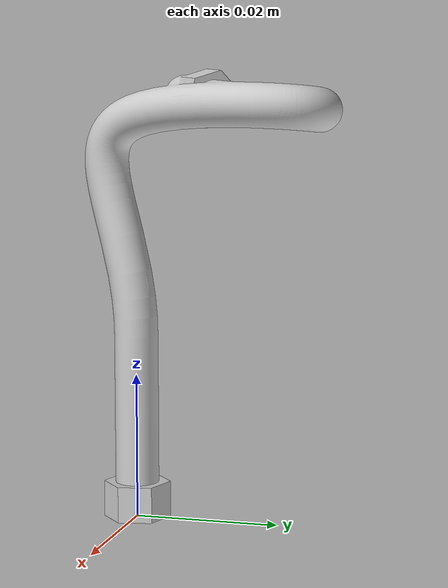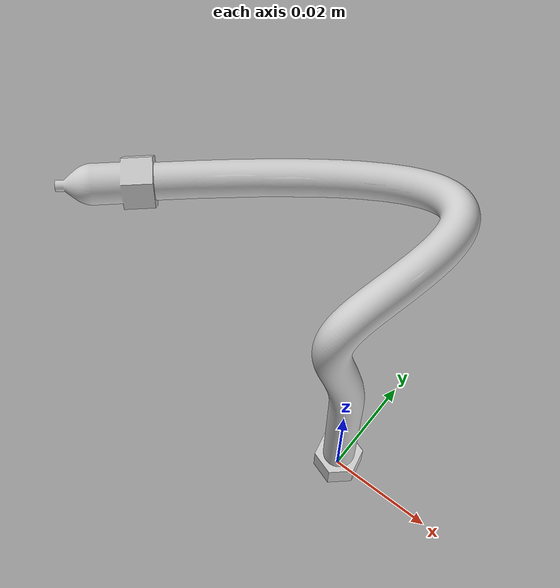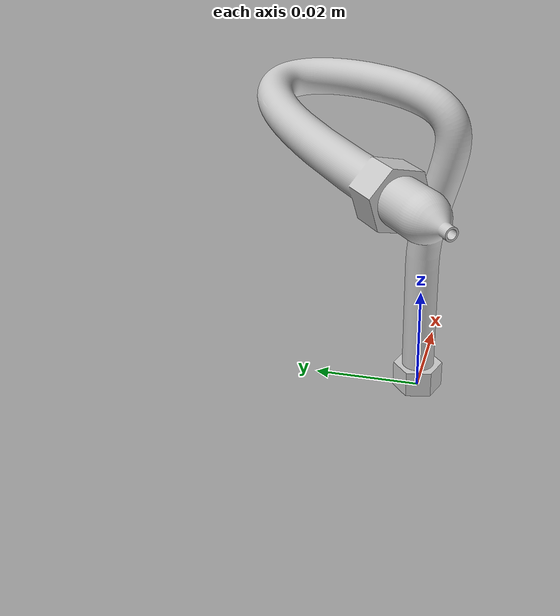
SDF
<?xml version="1.0" ?>
<sdf version="1.5">
  <model name="fuel-line1">
    <static>false</static>
    <link name="link">
      <collision name="collision">
        <geometry>
          <box>
            <size>1.70 0.50 0.57</size>
          </box>
        </geometry>
      </collision>
      <visual name="visual">
        <cast_shadows>true</cast_shadows>
        <geometry>
          <mesh>
            <scale>0.001 0.001 0.001</scale>
            <uri>model://fuel-line1/meshes/fuel-line1.dae</uri>
          </mesh>
        </geometry>
        <material>
          <script>
           <uri>file://media/materials/scripts/gazebo.material</uri>
           <name>Gazebo/Runway</name>
          </script>
        </material>
      </visual>
    </link>
  </model>
</sdf>
